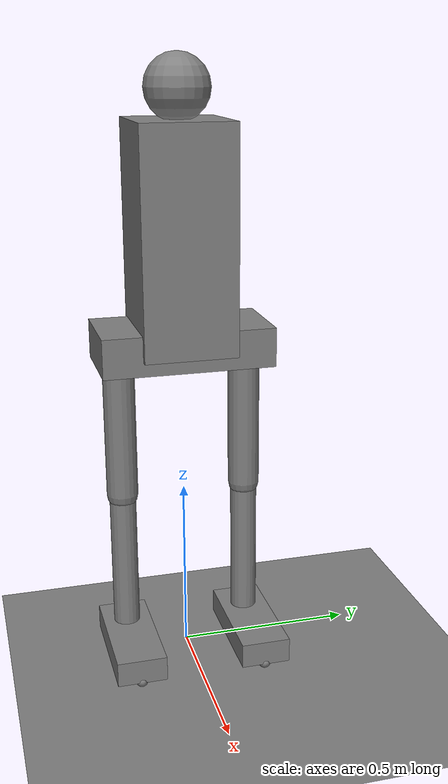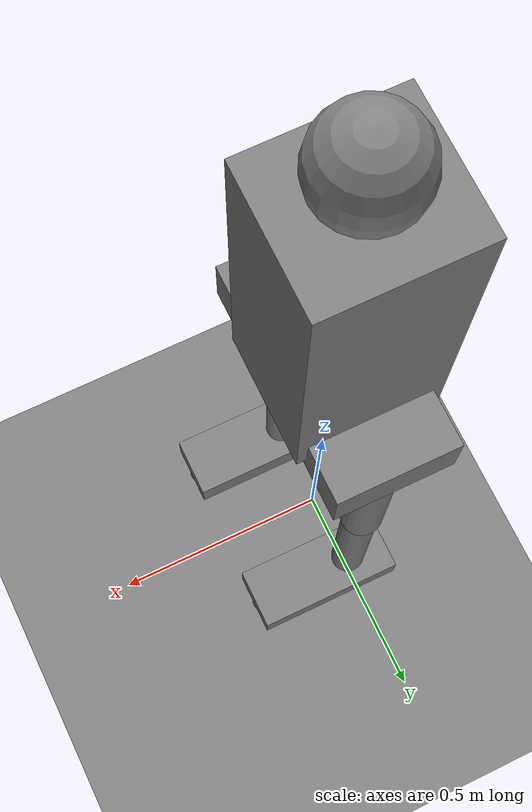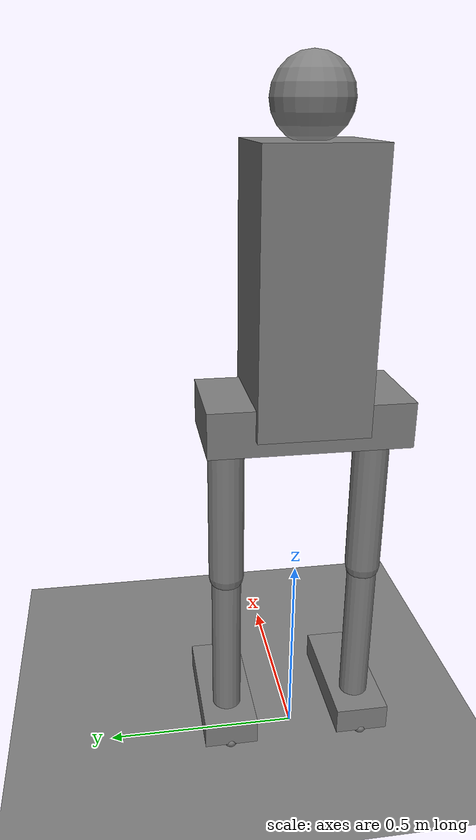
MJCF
<mujoco model="phase3_biped_3d_v1">
  <compiler angle="radian" coordinate="local"/>
  <option timestep="0.005" gravity="0 0 -9.81" integrator="RK4" cone="elliptic" solver="PGS"/>

  <default>
    <joint damping="2.0" armature="0.02" limited="true"/>
    <geom friction="1.2 0.08 0.02" solref="0.02 1" solimp="0.9 0.95 0.001"/>
    <site size="0.018"/>
  </default>

  <worldbody>
    <geom name="ground" type="plane" size="10 10 0.05" friction="1.2 0.08 0.02"/>

    <!-- Source torso body origin is 1.18 m. Its compound COM is 0.023298969 m
         above that origin, so this newt link starts at the source COM. -->
    <body name="torso" pos="0 0 1.203298969">
      <freejoint name="root"/>
      <inertial mass="9.7" diaginertia="0.6291711 0.6033411 0.13512333"/>
      <geom name="chest_geom" type="box" pos="0 0 0.026701031" size="0.14 0.13 0.31" mass="6.5"/>
      <geom name="pelvis_geom" type="box" pos="0 0 -0.268298969" size="0.12 0.24 0.055" mass="2.2"/>
      <geom name="head_geom" type="sphere" pos="0 0 0.416701031" size="0.09" mass="1.0"/>

      <body name="left_hip_roll_link" pos="0 0.18 -0.283298969">
        <inertial mass="0.05" diaginertia="0.001 0.001 0.001"/>
        <joint name="left_hip_roll" type="hinge" axis="1 0 0" range="-0.7 0.7" damping="8.0" armature="0.05"/>
        <body name="left_thigh" pos="0 0 -0.21">
          <inertial mass="2.2" diaginertia="0.043571344 0.043571344 0.0021718125"/>
          <joint name="left_hip" type="hinge" axis="0 1 0" pos="0 0 0.21" range="-1.0 1.0"/>
          <geom name="left_thigh_geom" type="capsule" size="0.045 0.21" mass="2.2"/>
          <body name="left_shin" pos="0 0 -0.42">
            <inertial mass="1.6" diaginertia="0.0302295468 0.0302295468 0.0011303288"/>
            <joint name="left_knee" type="hinge" axis="0 1 0" pos="0 0 0.21" range="-0.1 1.7"/>
            <geom name="left_shin_geom" type="capsule" size="0.038 0.21" mass="1.6"/>
            <body name="left_ankle_roll_link" pos="0 0 -0.21">
              <inertial mass="0.03" diaginertia="0.0005 0.0005 0.0005"/>
              <joint name="left_ankle_roll" type="hinge" axis="1 0 0" range="-0.5 0.5" damping="5.0" armature="0.04"/>
              <body name="left_foot" pos="0.075 0 -0.02">
                <inertial mass="0.8" diaginertia="0.0016333333 0.0080333333 0.0090133333"/>
                <joint name="left_ankle" type="hinge" axis="0 1 0" pos="-0.075 0 0.02" range="-0.8 0.8"/>
                <geom name="left_foot_geom" type="box" size="0.17 0.07 0.035" mass="0.8"/>
                <site name="left_heel_site" pos="-0.155 0 -0.035"/>
                <site name="left_toe_site" pos="0.155 0 -0.035"/>
              </body>
            </body>
          </body>
        </body>
      </body>

      <body name="right_hip_roll_link" pos="0 -0.18 -0.283298969">
        <inertial mass="0.05" diaginertia="0.001 0.001 0.001"/>
        <joint name="right_hip_roll" type="hinge" axis="1 0 0" range="-0.7 0.7" damping="8.0" armature="0.05"/>
        <body name="right_thigh" pos="0 0 -0.21">
          <inertial mass="2.2" diaginertia="0.043571344 0.043571344 0.0021718125"/>
          <joint name="right_hip" type="hinge" axis="0 1 0" pos="0 0 0.21" range="-1.0 1.0"/>
          <geom name="right_thigh_geom" type="capsule" size="0.045 0.21" mass="2.2"/>
          <body name="right_shin" pos="0 0 -0.42">
            <inertial mass="1.6" diaginertia="0.0302295468 0.0302295468 0.0011303288"/>
            <joint name="right_knee" type="hinge" axis="0 1 0" pos="0 0 0.21" range="-0.1 1.7"/>
            <geom name="right_shin_geom" type="capsule" size="0.038 0.21" mass="1.6"/>
            <body name="right_ankle_roll_link" pos="0 0 -0.21">
              <inertial mass="0.03" diaginertia="0.0005 0.0005 0.0005"/>
              <joint name="right_ankle_roll" type="hinge" axis="1 0 0" range="-0.5 0.5" damping="5.0" armature="0.04"/>
              <body name="right_foot" pos="0.075 0 -0.02">
                <inertial mass="0.8" diaginertia="0.0016333333 0.0080333333 0.0090133333"/>
                <joint name="right_ankle" type="hinge" axis="0 1 0" pos="-0.075 0 0.02" range="-0.8 0.8"/>
                <geom name="right_foot_geom" type="box" size="0.17 0.07 0.035" mass="0.8"/>
                <site name="right_heel_site" pos="-0.155 0 -0.035"/>
                <site name="right_toe_site" pos="0.155 0 -0.035"/>
              </body>
            </body>
          </body>
        </body>
      </body>
    </body>
  </worldbody>

  <actuator>
    <position name="left_hip_roll_motor" joint="left_hip_roll" kp="70" kv="20.300636017982495" ctrlrange="-0.7 0.7" forcerange="-70 70"/>
    <position name="left_hip_motor" joint="left_hip" kp="70" kv="20.161543163523177" ctrlrange="-0.9 0.9" forcerange="-70 70"/>
    <position name="left_knee_motor" joint="left_knee" kp="80" kv="9.699400068906062" ctrlrange="-0.05 1.4" forcerange="-80 80"/>
    <position name="left_ankle_roll_motor" joint="left_ankle_roll" kp="45" kv="2.76434440690736" ctrlrange="-0.5 0.5" forcerange="-45 45"/>
    <position name="left_ankle_motor" joint="left_ankle" kp="45" kv="2.4317894645713047" ctrlrange="-0.7 0.7" forcerange="-45 45"/>
    <position name="right_hip_roll_motor" joint="right_hip_roll" kp="70" kv="20.300636017982495" ctrlrange="-0.7 0.7" forcerange="-70 70"/>
    <position name="right_hip_motor" joint="right_hip" kp="70" kv="20.161543163523177" ctrlrange="-0.9 0.9" forcerange="-70 70"/>
    <position name="right_knee_motor" joint="right_knee" kp="80" kv="9.699400068906062" ctrlrange="-0.05 1.4" forcerange="-80 80"/>
    <position name="right_ankle_roll_motor" joint="right_ankle_roll" kp="45" kv="2.76434440690736" ctrlrange="-0.5 0.5" forcerange="-45 45"/>
    <position name="right_ankle_motor" joint="right_ankle" kp="45" kv="2.4317894645713047" ctrlrange="-0.7 0.7" forcerange="-45 45"/>
  </actuator>

  <sensor>
    <touch name="ground_touch" geom="ground"/>
    <touch name="chest_touch" geom="chest_geom"/>
    <touch name="pelvis_touch" geom="pelvis_geom"/>
    <touch name="head_touch" geom="head_geom"/>
    <touch name="left_thigh_touch" geom="left_thigh_geom"/>
    <touch name="left_shin_touch" geom="left_shin_geom"/>
    <touch name="left_foot_touch" geom="left_foot_geom"/>
    <touch name="right_thigh_touch" geom="right_thigh_geom"/>
    <touch name="right_shin_touch" geom="right_shin_geom"/>
    <touch name="right_foot_touch" geom="right_foot_geom"/>
  </sensor>
</mujoco>
